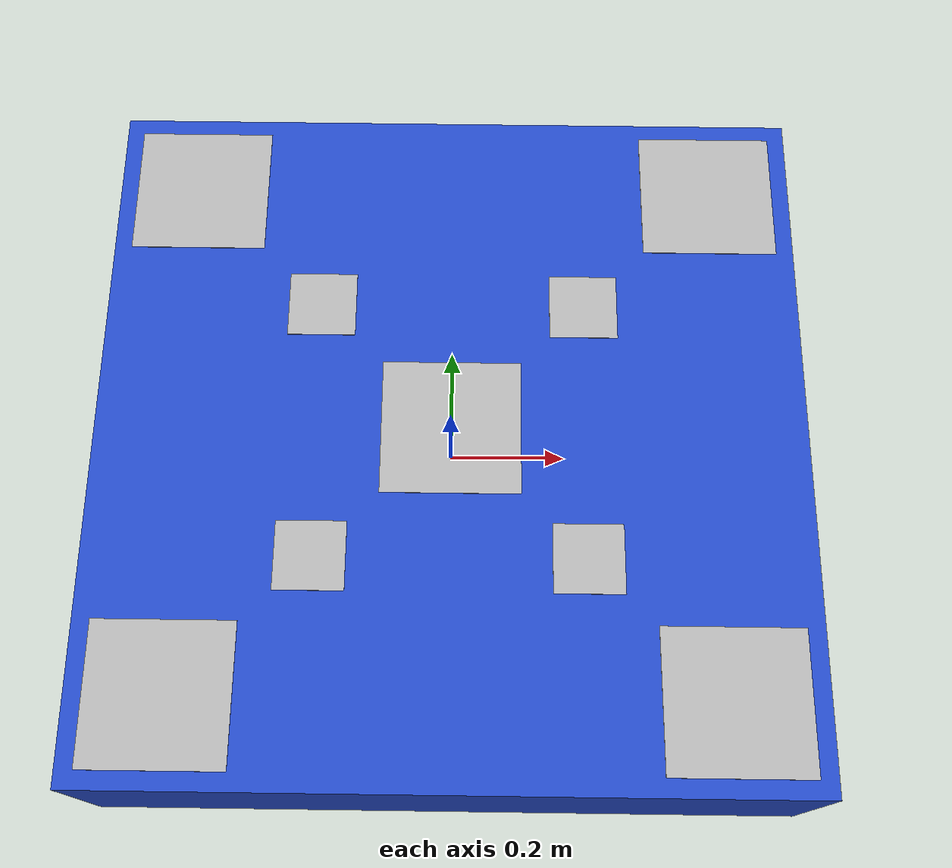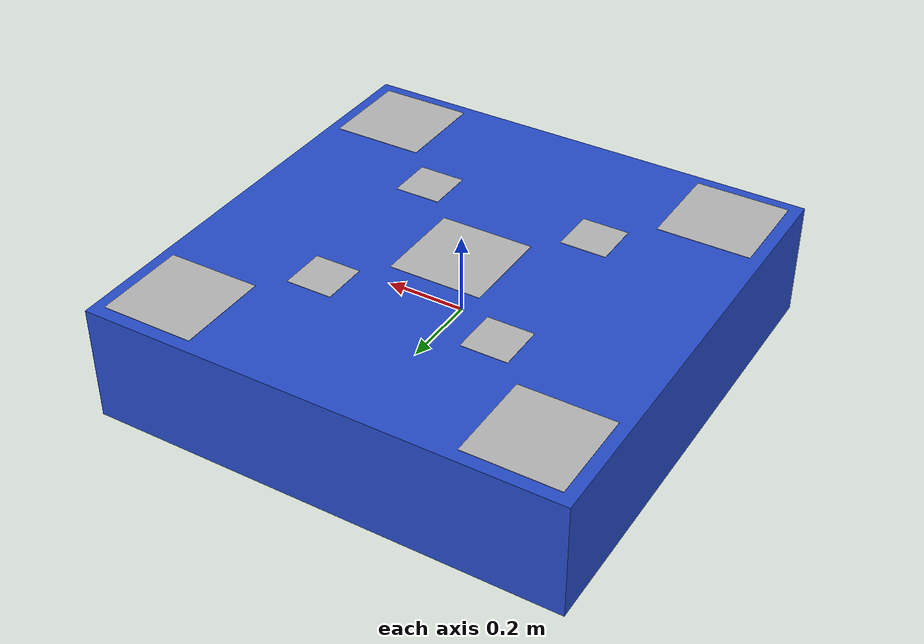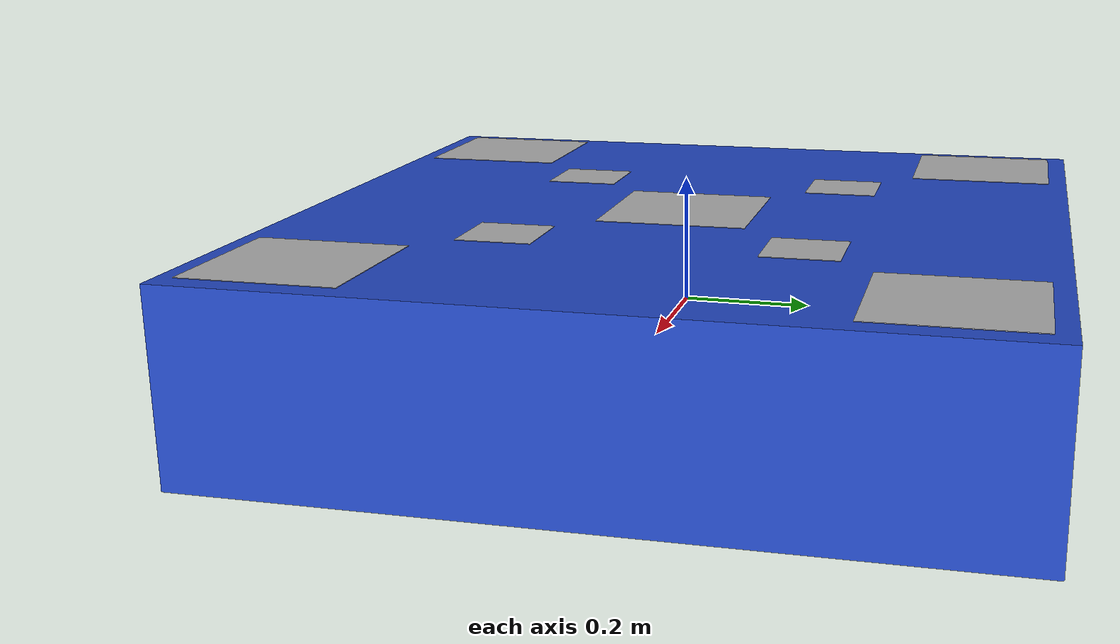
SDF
<?xml version="1.0" ?>
<sdf version="1.4">
  <model name="vision_landing_platform">
    <static>0</static>
    <link name="sensors_link">
    <inertial>
      <mass value="5000"/>
      <inertia ixx="0.4" ixy="0.0" ixz="0.0" iyy="0.4" iyz="0.0" izz="0.2"/>
    </inertial>
        <collision name="box_collision">
          <geometry>
            <box>
              <size>1.2 1.2 0.3</size>
            </box>
          </geometry>
      <surface>
        <friction>
          <ode>
            <mu>0.99</mu>
            <mu2>0.99</mu2>
          </ode>
        </friction>
      </surface>
        </collision>

   	<visual name="visual0">
          <geometry>
            <box>
              <size>0.235 0.235 0.001</size>
            </box>
          </geometry>
        <material>
          <script>
            <uri>model://vision_landing_platform/materials/scripts</uri>
            <uri>model://vision_landing_platform/materials/textures</uri>
            <name>aruco0</name>
          </script>
        </material>
        <pose frame=''>-0.4525 -0.4525 0.15 0 -0 0</pose>
        <cast_shadows>1</cast_shadows>
        <transparency>0.0</transparency>
        </visual>

   	<visual name="visual1">
          <geometry>
            <box>
              <size>0.235 0.235 0.001</size>
            </box>
          </geometry>
        <material>
          <script>
            <uri>model://vision_landing_platform/materials/scripts</uri>
            <uri>model://vision_landing_platform/materials/textures</uri>
            <name>aruco1</name>
          </script>
        </material>
        <pose frame=''>-0.4525 0.4525 0.15 0 -0 0</pose>
        <cast_shadows>1</cast_shadows>
        <transparency>0.0</transparency>
        </visual>

   	<visual name="visual2">
          <geometry>
            <box>
              <size>0.235 0.235 0.001</size>
            </box>
          </geometry>
        <material>
          <script>
            <uri>model://vision_landing_platform/materials/scripts</uri>
            <uri>model://vision_landing_platform/materials/textures</uri>
            <name>aruco2</name>
          </script>
        </material>
        <pose frame=''>0.4525 0.4525 0.15 0 -0 0</pose>
        <cast_shadows>1</cast_shadows>
        <transparency>0.0</transparency>
        </visual>

   	<visual name="visual3">
          <geometry>
            <box>
              <size>0.235 0.235 0.001</size>
            </box>
          </geometry>
        <material>
          <script>
            <uri>model://vision_landing_platform/materials/scripts</uri>
            <uri>model://vision_landing_platform/materials/textures</uri>
            <name>aruco3</name>
          </script>
        </material>
        <pose frame=''>0.4525 -0.4525 0.15 0 -0 0</pose>
        <cast_shadows>1</cast_shadows>
        <transparency>0.0</transparency>
        </visual>

   	<visual name="visual4">
          <geometry>
            <box>
              <size>0.235 0.235 0.001</size>
            </box>
          </geometry>
        <material>
          <script>
            <uri>model://vision_landing_platform/materials/scripts</uri>
            <uri>model://vision_landing_platform/materials/textures</uri>
            <name>aruco4</name>
          </script>
        </material>
        <pose frame=''>0 0 0.15 0 -0 0</pose>
        <cast_shadows>1</cast_shadows>
        <transparency>0.0</transparency>
        </visual>

   	<visual name="visual5">
          <geometry>
            <box>
              <size>0.117 0.117 0.001</size>
            </box>
          </geometry>
        <material>
          <script>
            <uri>model://vision_landing_platform/materials/scripts</uri>
            <uri>model://vision_landing_platform/materials/textures</uri>
            <name>aruco5</name>
          </script>
        </material>
        <pose frame=''>0.2262 0.2262 0.15 0 -0 0</pose>
        <cast_shadows>1</cast_shadows>
        <transparency>0.0</transparency>
        </visual>

   	<visual name="visual6">
          <geometry>
            <box>
              <size>0.117 0.117 0.001</size>
            </box>
          </geometry>
        <material>
          <script>
            <uri>model://vision_landing_platform/materials/scripts</uri>
            <uri>model://vision_landing_platform/materials/textures</uri>
            <name>aruco6</name>
          </script>
        </material>
        <pose frame=''>0.2262 -0.2262 0.15 0 -0 0</pose>
        <cast_shadows>1</cast_shadows>
        <transparency>0.0</transparency>
        </visual>

   	<visual name="visual7">
          <geometry>
            <box>
              <size>0.117 0.117 0.001</size>
            </box>
          </geometry>
        <material>
          <script>
            <uri>model://vision_landing_platform/materials/scripts</uri>
            <uri>model://vision_landing_platform/materials/textures</uri>
            <name>aruco7</name>
          </script>
        </material>
        <pose frame=''>-0.2262 -0.2262 0.15 0 -0 0</pose>
        <cast_shadows>1</cast_shadows>
        <transparency>0.0</transparency>
        </visual>

   	<visual name="visual8">
          <geometry>
            <box>
              <size>0.117 0.117 0.001</size>
            </box>
          </geometry>
        <material>
          <script>
            <uri>model://vision_landing_platform/materials/scripts</uri>
            <uri>model://vision_landing_platform/materials/textures</uri>
            <name>aruco8</name>
          </script>
        </material>
        <pose frame=''>-0.2262 0.2262 0.15 0 -0 0</pose>
        <cast_shadows>1</cast_shadows>
        <transparency>0.0</transparency>
        </visual>

        <visual name="visual">
          <geometry>
            <box>
              <size>1.2 1.2 0.295</size>
            </box>
          </geometry>
        <material>
          <script>
            <name>Gazebo/blue</name>
            <uri>file://media/materials/scripts/gazebo.material</uri>
          </script>
          <ambient>0.3 0.3 0.3 1</ambient>
          <diffuse>0.7 0.7 0.7 1</diffuse>
          <specular>0.01 0.01 0.01 1</specular>
          <emissive>0.7 0.7 0.7 1</emissive>
          <shader type='vertex'>
            <normal_map>__default__</normal_map>
          </shader>
        </material>
        <pose frame=''>0 0 0 0 -0 0</pose>
        <cast_shadows>1</cast_shadows>
        <transparency>0.0</transparency>
        </visual>
      <sensor name="contact_sensor_1" type="contact">
	<plugin name="my_contact_plugin" filename="libgazebo_ros_bumper.so"/>
          <contact>
            <collision>box_collision</collision>
          </contact>
      </sensor>
    </link>
      <plugin name="model_push" filename="libgazebo_moving_platform.so">
        <robotNamespace>/</robotNamespace>
      </plugin>
  </model>
</sdf>
